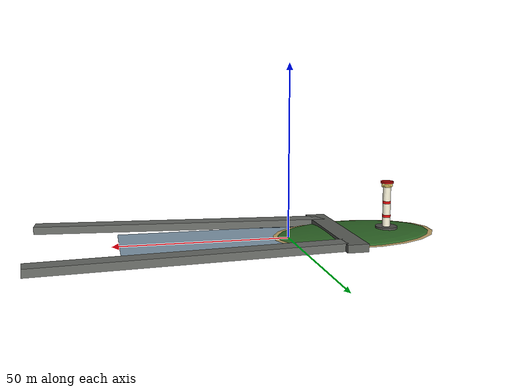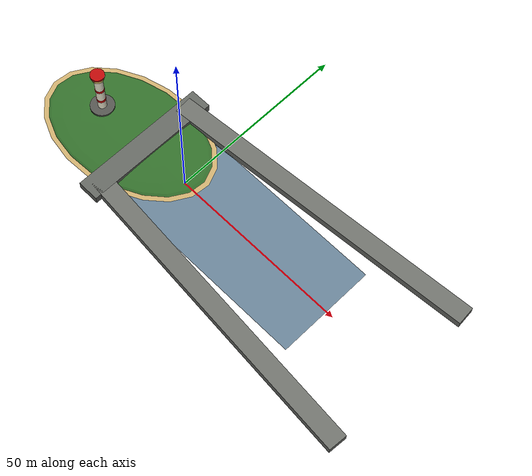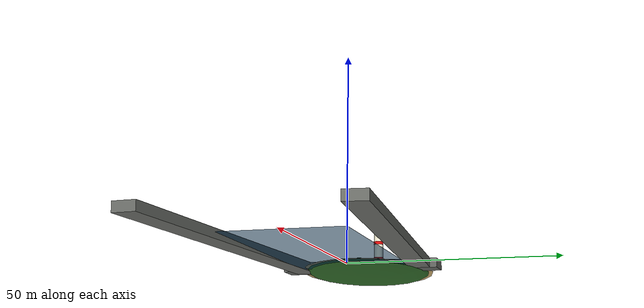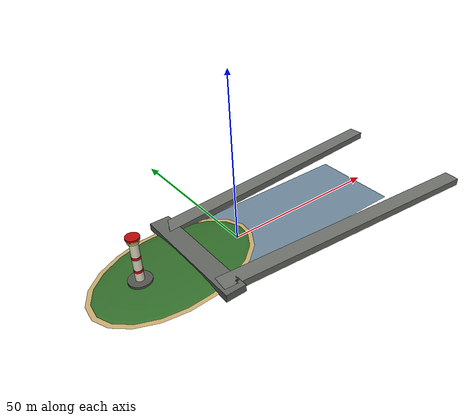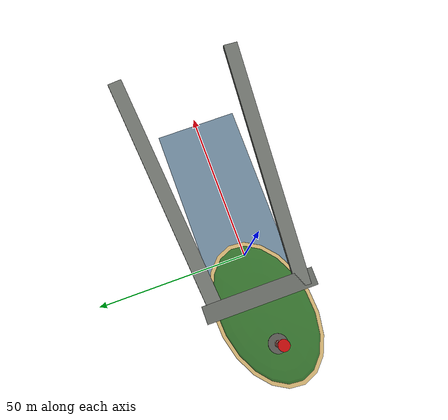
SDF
<?xml version="1.0"?>
<sdf version="1.10">
  <model name="breakwater_harbor_island_lighthouse">
    <static>true</static>
    <link name="harbor_island">
      <collision name="island_collision"><pose>-20 0 0.65 0 0 0.15</pose><geometry><ellipsoid><radii>24 15 1.45</radii></ellipsoid></geometry></collision>
      <visual name="island_visual"><pose>-20 0 0.35 0 0 0.15</pose><geometry><ellipsoid><radii>24 15 1.35</radii></ellipsoid></geometry><material><ambient>0.11 0.24 0.09 1</ambient><diffuse>0.19 0.42 0.16 1</diffuse></material></visual>
      <visual name="sand_ring"><pose>-20 0 0.42 0 0 0.15</pose><geometry><ellipsoid><radii>25 16 0.18</radii></ellipsoid></geometry><material><ambient>0.52 0.43 0.26 1</ambient><diffuse>0.78 0.66 0.42 1</diffuse></material></visual>

      <collision name="north_breakwater_collision"><pose>28 18 1.1 0 0 0.08</pose><geometry><box><size>88 5 2.2</size></box></geometry></collision>
      <collision name="south_breakwater_collision"><pose>28 -18 1.1 0 0 -0.08</pose><geometry><box><size>88 5 2.2</size></box></geometry></collision>
      <collision name="quay_collision"><pose>-14 0 1.1 0 0 0</pose><geometry><box><size>6 38 2.2</size></box></geometry></collision>
      <visual name="north_breakwater"><pose>28 18 1.1 0 0 0.08</pose><geometry><box><size>88 5 2.2</size></box></geometry><material><ambient>0.25 0.26 0.25 1</ambient><diffuse>0.42 0.43 0.41 1</diffuse></material></visual>
      <visual name="south_breakwater"><pose>28 -18 1.1 0 0 -0.08</pose><geometry><box><size>88 5 2.2</size></box></geometry><material><ambient>0.25 0.26 0.25 1</ambient><diffuse>0.42 0.43 0.41 1</diffuse></material></visual>
      <visual name="quay"><pose>-14 0 1.1 0 0 0</pose><geometry><box><size>6 38 2.2</size></box></geometry><material><ambient>0.22 0.23 0.22 1</ambient><diffuse>0.38 0.39 0.37 1</diffuse></material></visual>
      <visual name="harbor_water_hint"><pose>20 0 0.05 0 0 0</pose><geometry><box><size>56 27 0.05</size></box></geometry><material><ambient>0.0 0.09 0.18 0.55</ambient><diffuse>0.0 0.18 0.32 0.55</diffuse></material></visual>

      <collision name="lighthouse_base_collision"><pose>-30 0 1.65 0 0 0</pose><geometry><cylinder><radius>3.2</radius><length>1.0</length></cylinder></geometry></collision>
      <visual name="lighthouse_base"><pose>-30 0 1.65 0 0 0</pose><geometry><cylinder><radius>3.2</radius><length>1.0</length></cylinder></geometry><material><ambient>0.18 0.18 0.17 1</ambient><diffuse>0.32 0.32 0.30 1</diffuse></material></visual>
      <collision name="lighthouse_tower_collision"><pose>-30 0 8.0 0 0 0</pose><geometry><cylinder><radius>1.15</radius><length>12.2</length></cylinder></geometry></collision>
      <visual name="lighthouse_tower"><pose>-30 0 8.0 0 0 0</pose><geometry><cylinder><radius>1.15</radius><length>12.2</length></cylinder></geometry><material><ambient>0.86 0.84 0.76 1</ambient><diffuse>0.96 0.94 0.84 1</diffuse></material></visual>
      <visual name="lighthouse_red_band_low"><pose>-30 0 5.2 0 0 0</pose><geometry><cylinder><radius>1.2</radius><length>0.75</length></cylinder></geometry><material><ambient>0.55 0.02 0.02 1</ambient><diffuse>0.86 0.04 0.035 1</diffuse></material></visual>
      <visual name="lighthouse_red_band_high"><pose>-30 0 9.3 0 0 0</pose><geometry><cylinder><radius>1.2</radius><length>0.75</length></cylinder></geometry><material><ambient>0.55 0.02 0.02 1</ambient><diffuse>0.86 0.04 0.035 1</diffuse></material></visual>
      <visual name="lantern_room"><pose>-30 0 14.45 0 0 0</pose><geometry><cylinder><radius>1.55</radius><length>1.1</length></cylinder></geometry><material><ambient>0.92 0.78 0.28 0.85</ambient><diffuse>1 0.88 0.42 0.85</diffuse></material></visual>
      <visual name="lighthouse_roof"><pose>-30 0 15.25 0 0 0</pose><geometry><cylinder><radius>1.85</radius><length>0.55</length></cylinder></geometry><material><ambient>0.45 0.02 0.02 1</ambient><diffuse>0.72 0.03 0.03 1</diffuse></material></visual>

      <light name="lighthouse_beacon" type="point"><pose>-30 0 14.55 0 0 0</pose><cast_shadows>false</cast_shadows><intensity>5.0</intensity><diffuse>1 0.88 0.42 1</diffuse><specular>1 0.92 0.65 1</specular><attenuation><range>220</range><constant>0.45</constant><linear>0.012</linear><quadratic>0.00025</quadratic></attenuation></light>
      <light name="green_harbor_light" type="point"><pose>70 18 4.2 0 0 0</pose><cast_shadows>false</cast_shadows><intensity>2.2</intensity><diffuse>0.05 1 0.22 1</diffuse><attenuation><range>70</range><constant>0.65</constant><linear>0.025</linear><quadratic>0.0008</quadratic></attenuation></light>
      <light name="red_harbor_light" type="point"><pose>70 -18 4.2 0 0 0</pose><cast_shadows>false</cast_shadows><intensity>2.2</intensity><diffuse>1 0.05 0.025 1</diffuse><attenuation><range>70</range><constant>0.65</constant><linear>0.025</linear><quadratic>0.0008</quadratic></attenuation></light>
    </link>
  </model>
</sdf>
